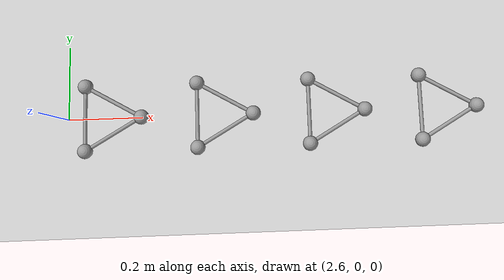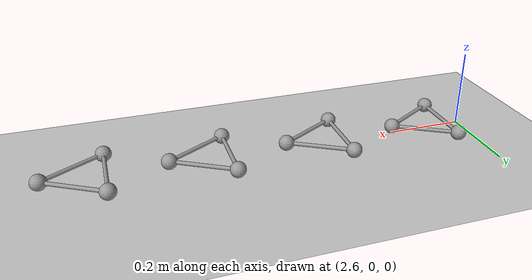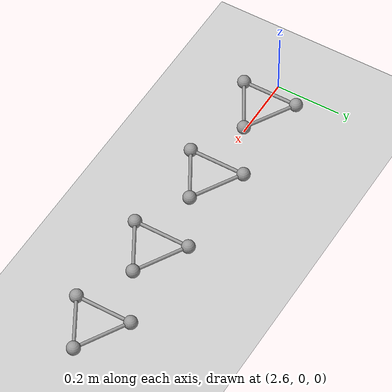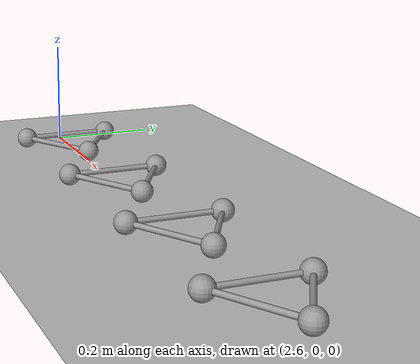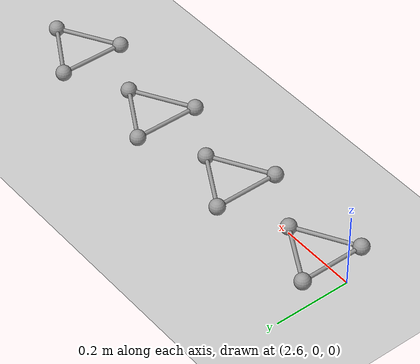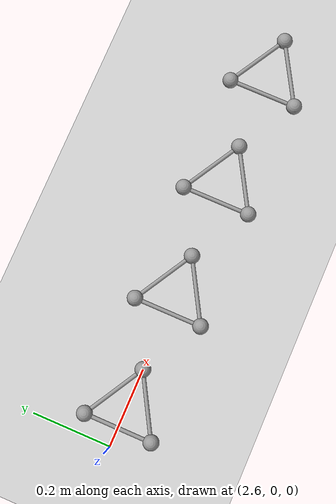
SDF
<sdf version="1.6">
 <world name="default">
  <include><uri>model://ground_plane</uri></include>
  <include><uri>model://sun</uri></include>
  <model name="triball_9">
   <pose>2.6999999999999997 0 0 0 0 0</pose>
   <link name="link">
    <pose>0 0 0.02 0 0 0</pose>
    <inertial>
     <mass>0.060318578948924034</mass>
     <inertia>
      <ixx>0.000311243867376448</ixx>
      <iyy>0.000311243867376448</iyy>
      <izz>0.0006128367621210681</izz>
      <ixy>0.0</ixy>
      <ixz>0.0</ixz>
      <iyz>0.0</iyz>
     </inertia>
    </inertial>
    <sensor name="imu" type="imu"><always_on>true</always_on></sensor>
    <collision name="collision_a">
     <pose>0.09999999999999999 0 0  0 0 0</pose>
     <geometry><sphere><radius>0.02</radius></sphere></geometry>
     <surface><friction><ode><mu>0.9</mu><mu2>0.9</mu2><fdir1>1 0 0</fdir1></ode></friction></surface>
    </collision>
    <visual name="visual_a">
     <pose>0.09999999999999999 0 0  0 0 0</pose>
     <geometry><sphere><radius>0.02</radius></sphere></geometry>
     <material>
      <script><uri>file://media/materials/scripts/gazebo.material</uri><name>Gazebo/Grey</name></script>
     </material>
    </visual>
    <collision name="collision_a_to_b">
     <pose>0.024999999999999998 0.04330127018922193 0.0  -1.5707962969925737 -1.0471975511965974 1.047197525387029</pose>
     <geometry><cylinder><radius>0.005</radius><length>0.17320508075688773</length></cylinder></geometry>
     <surface><friction><ode><mu>0.9</mu><mu2>0.9</mu2></ode></friction></surface>
    </collision>
    <visual name="visual_a_to_b">
     <pose>0.024999999999999998 0.04330127018922193 0.0  -1.5707962969925737 -1.0471975511965974 1.047197525387029</pose>
     <geometry><cylinder><radius>0.005</radius><length>0.17320508075688773</length></cylinder></geometry>
     <material>
      <script><uri>file://media/materials/scripts/gazebo.material</uri><name>Gazebo/Grey</name></script>
     </material>
    </visual>
    <collision name="collision_a_to_c">
     <pose>0.024999999999999998 -0.04330127018922193 0.0  1.5707962969925737 -1.0471975511965974 -1.047197525387029</pose>
     <geometry><cylinder><radius>0.005</radius><length>0.17320508075688773</length></cylinder></geometry>
     <surface><friction><ode><mu>0.9</mu><mu2>0.9</mu2></ode></friction></surface>
    </collision>
    <visual name="visual_a_to_c">
     <pose>0.024999999999999998 -0.04330127018922193 0.0  1.5707962969925737 -1.0471975511965974 -1.047197525387029</pose>
     <geometry><cylinder><radius>0.005</radius><length>0.17320508075688773</length></cylinder></geometry>
     <material>
      <script><uri>file://media/materials/scripts/gazebo.material</uri><name>Gazebo/Grey</name></script>
     </material>
    </visual>
    <collision name="collision_b">
     <pose>-0.049999999999999996 0.08660254037844387 0  0 0 0</pose>
     <geometry><sphere><radius>0.02</radius></sphere></geometry>
     <surface><friction><ode><mu>0.9</mu><mu2>0.9</mu2><fdir1>1 0 0</fdir1></ode></friction></surface>
    </collision>
    <visual name="visual_b">
     <pose>-0.049999999999999996 0.08660254037844387 0  0 0 0</pose>
     <geometry><sphere><radius>0.02</radius></sphere></geometry>
     <material>
      <script><uri>file://media/materials/scripts/gazebo.material</uri><name>Gazebo/Grey</name></script>
     </material>
    </visual>
    <collision name="collision_b_to_c">
     <pose>-0.049999999999999996 0.0 0.0  1.5707963267948963 -0.0 0.0</pose>
     <geometry><cylinder><radius>0.005</radius><length>0.17320508075688773</length></cylinder></geometry>
     <surface><friction><ode><mu>0.9</mu><mu2>0.9</mu2></ode></friction></surface>
    </collision>
    <visual name="visual_b_to_c">
     <pose>-0.049999999999999996 0.0 0.0  1.5707963267948963 -0.0 0.0</pose>
     <geometry><cylinder><radius>0.005</radius><length>0.17320508075688773</length></cylinder></geometry>
     <material>
      <script><uri>file://media/materials/scripts/gazebo.material</uri><name>Gazebo/Grey</name></script>
     </material>
    </visual>
    <collision name="collision_c">
     <pose>-0.049999999999999996 -0.08660254037844387 0  0 0 0</pose>
     <geometry><sphere><radius>0.02</radius></sphere></geometry>
     <surface><friction><ode><mu>0.9</mu><mu2>0.9</mu2><fdir1>1 0 0</fdir1></ode></friction></surface>
    </collision>
    <visual name="visual_c">
     <pose>-0.049999999999999996 -0.08660254037844387 0  0 0 0</pose>
     <geometry><sphere><radius>0.02</radius></sphere></geometry>
     <material>
      <script><uri>file://media/materials/scripts/gazebo.material</uri><name>Gazebo/Grey</name></script>
     </material>
    </visual>
   </link>
   <plugin name="triball_9" filename="libInitialVelocityPlugin.so">
    <linear>0 15 0</linear>
    <angular>0 0 -65.625</angular>
   </plugin>
  </model>
  <model name="triball_10">
   <pose>3.0 0 0 0 0 0</pose>
   <link name="link">
    <pose>0 0 0.02 0 0 0</pose>
    <inertial>
     <mass>0.060318578948924034</mass>
     <inertia>
      <ixx>0.000311243867376448</ixx>
      <iyy>0.000311243867376448</iyy>
      <izz>0.0006128367621210681</izz>
      <ixy>0.0</ixy>
      <ixz>0.0</ixz>
      <iyz>0.0</iyz>
     </inertia>
    </inertial>
    <sensor name="imu" type="imu"><always_on>true</always_on></sensor>
    <collision name="collision_a">
     <pose>0.09999999999999999 0 0  0 0 0</pose>
     <geometry><sphere><radius>0.02</radius></sphere></geometry>
     <surface><friction><ode><mu>0.9</mu><mu2>0.9</mu2><fdir1>1 0 0</fdir1></ode></friction></surface>
    </collision>
    <visual name="visual_a">
     <pose>0.09999999999999999 0 0  0 0 0</pose>
     <geometry><sphere><radius>0.02</radius></sphere></geometry>
     <material>
      <script><uri>file://media/materials/scripts/gazebo.material</uri><name>Gazebo/Grey</name></script>
     </material>
    </visual>
    <collision name="collision_a_to_b">
     <pose>0.024999999999999998 0.04330127018922193 0.0  -1.5707962969925737 -1.0471975511965974 1.047197525387029</pose>
     <geometry><cylinder><radius>0.005</radius><length>0.17320508075688773</length></cylinder></geometry>
     <surface><friction><ode><mu>0.9</mu><mu2>0.9</mu2></ode></friction></surface>
    </collision>
    <visual name="visual_a_to_b">
     <pose>0.024999999999999998 0.04330127018922193 0.0  -1.5707962969925737 -1.0471975511965974 1.047197525387029</pose>
     <geometry><cylinder><radius>0.005</radius><length>0.17320508075688773</length></cylinder></geometry>
     <material>
      <script><uri>file://media/materials/scripts/gazebo.material</uri><name>Gazebo/Grey</name></script>
     </material>
    </visual>
    <collision name="collision_a_to_c">
     <pose>0.024999999999999998 -0.04330127018922193 0.0  1.5707962969925737 -1.0471975511965974 -1.047197525387029</pose>
     <geometry><cylinder><radius>0.005</radius><length>0.17320508075688773</length></cylinder></geometry>
     <surface><friction><ode><mu>0.9</mu><mu2>0.9</mu2></ode></friction></surface>
    </collision>
    <visual name="visual_a_to_c">
     <pose>0.024999999999999998 -0.04330127018922193 0.0  1.5707962969925737 -1.0471975511965974 -1.047197525387029</pose>
     <geometry><cylinder><radius>0.005</radius><length>0.17320508075688773</length></cylinder></geometry>
     <material>
      <script><uri>file://media/materials/scripts/gazebo.material</uri><name>Gazebo/Grey</name></script>
     </material>
    </visual>
    <collision name="collision_b">
     <pose>-0.049999999999999996 0.08660254037844387 0  0 0 0</pose>
     <geometry><sphere><radius>0.02</radius></sphere></geometry>
     <surface><friction><ode><mu>0.9</mu><mu2>0.9</mu2><fdir1>1 0 0</fdir1></ode></friction></surface>
    </collision>
    <visual name="visual_b">
     <pose>-0.049999999999999996 0.08660254037844387 0  0 0 0</pose>
     <geometry><sphere><radius>0.02</radius></sphere></geometry>
     <material>
      <script><uri>file://media/materials/scripts/gazebo.material</uri><name>Gazebo/Grey</name></script>
     </material>
    </visual>
    <collision name="collision_b_to_c">
     <pose>-0.049999999999999996 0.0 0.0  1.5707963267948963 -0.0 0.0</pose>
     <geometry><cylinder><radius>0.005</radius><length>0.17320508075688773</length></cylinder></geometry>
     <surface><friction><ode><mu>0.9</mu><mu2>0.9</mu2></ode></friction></surface>
    </collision>
    <visual name="visual_b_to_c">
     <pose>-0.049999999999999996 0.0 0.0  1.5707963267948963 -0.0 0.0</pose>
     <geometry><cylinder><radius>0.005</radius><length>0.17320508075688773</length></cylinder></geometry>
     <material>
      <script><uri>file://media/materials/scripts/gazebo.material</uri><name>Gazebo/Grey</name></script>
     </material>
    </visual>
    <collision name="collision_c">
     <pose>-0.049999999999999996 -0.08660254037844387 0  0 0 0</pose>
     <geometry><sphere><radius>0.02</radius></sphere></geometry>
     <surface><friction><ode><mu>0.9</mu><mu2>0.9</mu2><fdir1>1 0 0</fdir1></ode></friction></surface>
    </collision>
    <visual name="visual_c">
     <pose>-0.049999999999999996 -0.08660254037844387 0  0 0 0</pose>
     <geometry><sphere><radius>0.02</radius></sphere></geometry>
     <material>
      <script><uri>file://media/materials/scripts/gazebo.material</uri><name>Gazebo/Grey</name></script>
     </material>
    </visual>
   </link>
   <plugin name="triball_10" filename="libInitialVelocityPlugin.so">
    <linear>0 15 0</linear>
    <angular>0 0 -56.25</angular>
   </plugin>
  </model>
  <model name="triball_11">
   <pose>3.3 0 0 0 0 0</pose>
   <link name="link">
    <pose>0 0 0.02 0 0 0</pose>
    <inertial>
     <mass>0.060318578948924034</mass>
     <inertia>
      <ixx>0.000311243867376448</ixx>
      <iyy>0.000311243867376448</iyy>
      <izz>0.0006128367621210681</izz>
      <ixy>0.0</ixy>
      <ixz>0.0</ixz>
      <iyz>0.0</iyz>
     </inertia>
    </inertial>
    <sensor name="imu" type="imu"><always_on>true</always_on></sensor>
    <collision name="collision_a">
     <pose>0.09999999999999999 0 0  0 0 0</pose>
     <geometry><sphere><radius>0.02</radius></sphere></geometry>
     <surface><friction><ode><mu>0.9</mu><mu2>0.9</mu2><fdir1>1 0 0</fdir1></ode></friction></surface>
    </collision>
    <visual name="visual_a">
     <pose>0.09999999999999999 0 0  0 0 0</pose>
     <geometry><sphere><radius>0.02</radius></sphere></geometry>
     <material>
      <script><uri>file://media/materials/scripts/gazebo.material</uri><name>Gazebo/Grey</name></script>
     </material>
    </visual>
    <collision name="collision_a_to_b">
     <pose>0.024999999999999998 0.04330127018922193 0.0  -1.5707962969925737 -1.0471975511965974 1.047197525387029</pose>
     <geometry><cylinder><radius>0.005</radius><length>0.17320508075688773</length></cylinder></geometry>
     <surface><friction><ode><mu>0.9</mu><mu2>0.9</mu2></ode></friction></surface>
    </collision>
    <visual name="visual_a_to_b">
     <pose>0.024999999999999998 0.04330127018922193 0.0  -1.5707962969925737 -1.0471975511965974 1.047197525387029</pose>
     <geometry><cylinder><radius>0.005</radius><length>0.17320508075688773</length></cylinder></geometry>
     <material>
      <script><uri>file://media/materials/scripts/gazebo.material</uri><name>Gazebo/Grey</name></script>
     </material>
    </visual>
    <collision name="collision_a_to_c">
     <pose>0.024999999999999998 -0.04330127018922193 0.0  1.5707962969925737 -1.0471975511965974 -1.047197525387029</pose>
     <geometry><cylinder><radius>0.005</radius><length>0.17320508075688773</length></cylinder></geometry>
     <surface><friction><ode><mu>0.9</mu><mu2>0.9</mu2></ode></friction></surface>
    </collision>
    <visual name="visual_a_to_c">
     <pose>0.024999999999999998 -0.04330127018922193 0.0  1.5707962969925737 -1.0471975511965974 -1.047197525387029</pose>
     <geometry><cylinder><radius>0.005</radius><length>0.17320508075688773</length></cylinder></geometry>
     <material>
      <script><uri>file://media/materials/scripts/gazebo.material</uri><name>Gazebo/Grey</name></script>
     </material>
    </visual>
    <collision name="collision_b">
     <pose>-0.049999999999999996 0.08660254037844387 0  0 0 0</pose>
     <geometry><sphere><radius>0.02</radius></sphere></geometry>
     <surface><friction><ode><mu>0.9</mu><mu2>0.9</mu2><fdir1>1 0 0</fdir1></ode></friction></surface>
    </collision>
    <visual name="visual_b">
     <pose>-0.049999999999999996 0.08660254037844387 0  0 0 0</pose>
     <geometry><sphere><radius>0.02</radius></sphere></geometry>
     <material>
      <script><uri>file://media/materials/scripts/gazebo.material</uri><name>Gazebo/Grey</name></script>
     </material>
    </visual>
    <collision name="collision_b_to_c">
     <pose>-0.049999999999999996 0.0 0.0  1.5707963267948963 -0.0 0.0</pose>
     <geometry><cylinder><radius>0.005</radius><length>0.17320508075688773</length></cylinder></geometry>
     <surface><friction><ode><mu>0.9</mu><mu2>0.9</mu2></ode></friction></surface>
    </collision>
    <visual name="visual_b_to_c">
     <pose>-0.049999999999999996 0.0 0.0  1.5707963267948963 -0.0 0.0</pose>
     <geometry><cylinder><radius>0.005</radius><length>0.17320508075688773</length></cylinder></geometry>
     <material>
      <script><uri>file://media/materials/scripts/gazebo.material</uri><name>Gazebo/Grey</name></script>
     </material>
    </visual>
    <collision name="collision_c">
     <pose>-0.049999999999999996 -0.08660254037844387 0  0 0 0</pose>
     <geometry><sphere><radius>0.02</radius></sphere></geometry>
     <surface><friction><ode><mu>0.9</mu><mu2>0.9</mu2><fdir1>1 0 0</fdir1></ode></friction></surface>
    </collision>
    <visual name="visual_c">
     <pose>-0.049999999999999996 -0.08660254037844387 0  0 0 0</pose>
     <geometry><sphere><radius>0.02</radius></sphere></geometry>
     <material>
      <script><uri>file://media/materials/scripts/gazebo.material</uri><name>Gazebo/Grey</name></script>
     </material>
    </visual>
   </link>
   <plugin name="triball_11" filename="libInitialVelocityPlugin.so">
    <linear>0 15 0</linear>
    <angular>0 0 -46.875</angular>
   </plugin>
  </model>
  <model name="triball_12">
   <pose>3.5999999999999996 0 0 0 0 0</pose>
   <link name="link">
    <pose>0 0 0.02 0 0 0</pose>
    <inertial>
     <mass>0.060318578948924034</mass>
     <inertia>
      <ixx>0.000311243867376448</ixx>
      <iyy>0.000311243867376448</iyy>
      <izz>0.0006128367621210681</izz>
      <ixy>0.0</ixy>
      <ixz>0.0</ixz>
      <iyz>0.0</iyz>
     </inertia>
    </inertial>
    <sensor name="imu" type="imu"><always_on>true</always_on></sensor>
    <collision name="collision_a">
     <pose>0.09999999999999999 0 0  0 0 0</pose>
     <geometry><sphere><radius>0.02</radius></sphere></geometry>
     <surface><friction><ode><mu>0.9</mu><mu2>0.9</mu2><fdir1>1 0 0</fdir1></ode></friction></surface>
    </collision>
    <visual name="visual_a">
     <pose>0.09999999999999999 0 0  0 0 0</pose>
     <geometry><sphere><radius>0.02</radius></sphere></geometry>
     <material>
      <script><uri>file://media/materials/scripts/gazebo.material</uri><name>Gazebo/Grey</name></script>
     </material>
    </visual>
    <collision name="collision_a_to_b">
     <pose>0.024999999999999998 0.04330127018922193 0.0  -1.5707962969925737 -1.0471975511965974 1.047197525387029</pose>
     <geometry><cylinder><radius>0.005</radius><length>0.17320508075688773</length></cylinder></geometry>
     <surface><friction><ode><mu>0.9</mu><mu2>0.9</mu2></ode></friction></surface>
    </collision>
    <visual name="visual_a_to_b">
     <pose>0.024999999999999998 0.04330127018922193 0.0  -1.5707962969925737 -1.0471975511965974 1.047197525387029</pose>
     <geometry><cylinder><radius>0.005</radius><length>0.17320508075688773</length></cylinder></geometry>
     <material>
      <script><uri>file://media/materials/scripts/gazebo.material</uri><name>Gazebo/Grey</name></script>
     </material>
    </visual>
    <collision name="collision_a_to_c">
     <pose>0.024999999999999998 -0.04330127018922193 0.0  1.5707962969925737 -1.0471975511965974 -1.047197525387029</pose>
     <geometry><cylinder><radius>0.005</radius><length>0.17320508075688773</length></cylinder></geometry>
     <surface><friction><ode><mu>0.9</mu><mu2>0.9</mu2></ode></friction></surface>
    </collision>
    <visual name="visual_a_to_c">
     <pose>0.024999999999999998 -0.04330127018922193 0.0  1.5707962969925737 -1.0471975511965974 -1.047197525387029</pose>
     <geometry><cylinder><radius>0.005</radius><length>0.17320508075688773</length></cylinder></geometry>
     <material>
      <script><uri>file://media/materials/scripts/gazebo.material</uri><name>Gazebo/Grey</name></script>
     </material>
    </visual>
    <collision name="collision_b">
     <pose>-0.049999999999999996 0.08660254037844387 0  0 0 0</pose>
     <geometry><sphere><radius>0.02</radius></sphere></geometry>
     <surface><friction><ode><mu>0.9</mu><mu2>0.9</mu2><fdir1>1 0 0</fdir1></ode></friction></surface>
    </collision>
    <visual name="visual_b">
     <pose>-0.049999999999999996 0.08660254037844387 0  0 0 0</pose>
     <geometry><sphere><radius>0.02</radius></sphere></geometry>
     <material>
      <script><uri>file://media/materials/scripts/gazebo.material</uri><name>Gazebo/Grey</name></script>
     </material>
    </visual>
    <collision name="collision_b_to_c">
     <pose>-0.049999999999999996 0.0 0.0  1.5707963267948963 -0.0 0.0</pose>
     <geometry><cylinder><radius>0.005</radius><length>0.17320508075688773</length></cylinder></geometry>
     <surface><friction><ode><mu>0.9</mu><mu2>0.9</mu2></ode></friction></surface>
    </collision>
    <visual name="visual_b_to_c">
     <pose>-0.049999999999999996 0.0 0.0  1.5707963267948963 -0.0 0.0</pose>
     <geometry><cylinder><radius>0.005</radius><length>0.17320508075688773</length></cylinder></geometry>
     <material>
      <script><uri>file://media/materials/scripts/gazebo.material</uri><name>Gazebo/Grey</name></script>
     </material>
    </visual>
    <collision name="collision_c">
     <pose>-0.049999999999999996 -0.08660254037844387 0  0 0 0</pose>
     <geometry><sphere><radius>0.02</radius></sphere></geometry>
     <surface><friction><ode><mu>0.9</mu><mu2>0.9</mu2><fdir1>1 0 0</fdir1></ode></friction></surface>
    </collision>
    <visual name="visual_c">
     <pose>-0.049999999999999996 -0.08660254037844387 0  0 0 0</pose>
     <geometry><sphere><radius>0.02</radius></sphere></geometry>
     <material>
      <script><uri>file://media/materials/scripts/gazebo.material</uri><name>Gazebo/Grey</name></script>
     </material>
    </visual>
   </link>
   <plugin name="triball_12" filename="libInitialVelocityPlugin.so">
    <linear>0 15 0</linear>
    <angular>0 0 -37.5</angular>
   </plugin>
  </model>
 </world>
</sdf>
